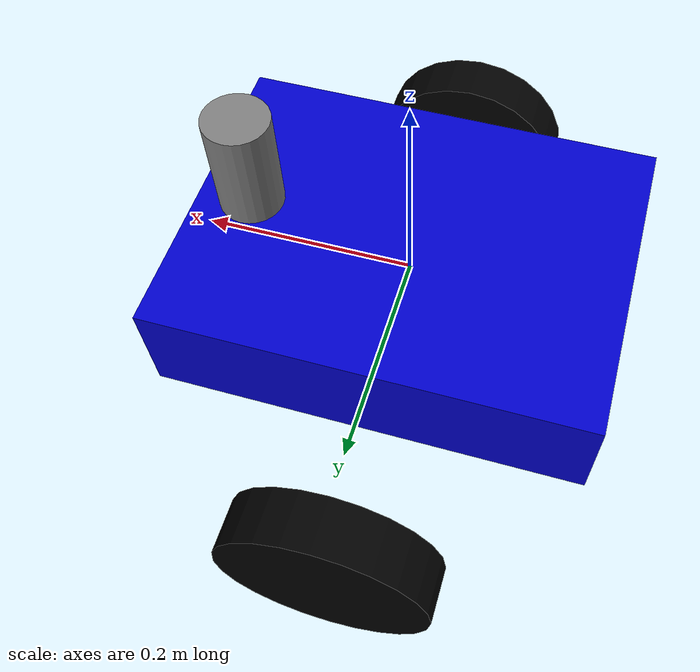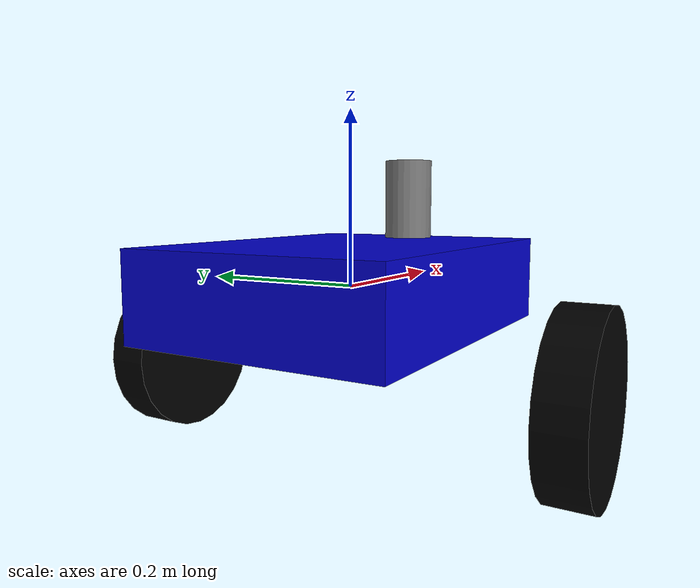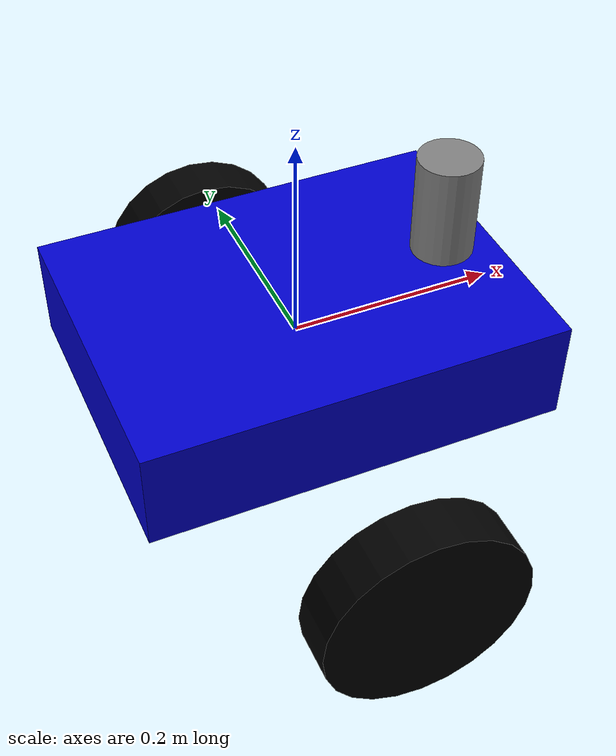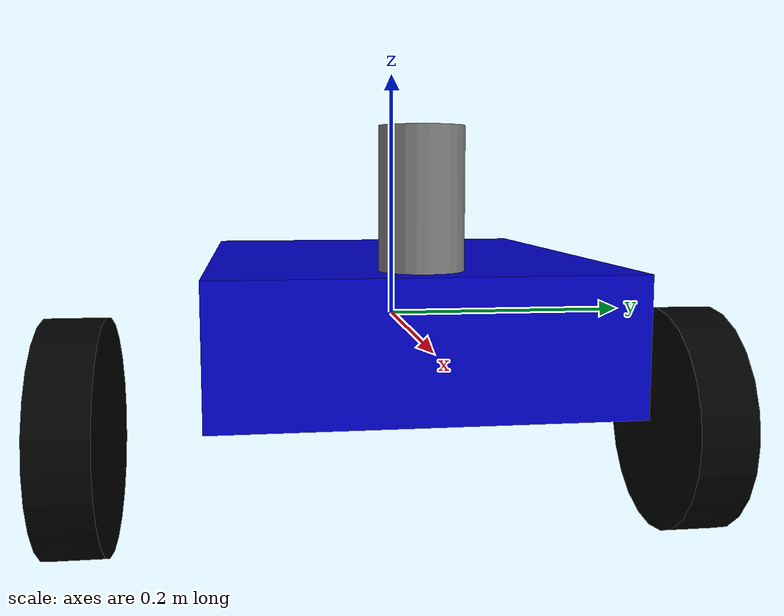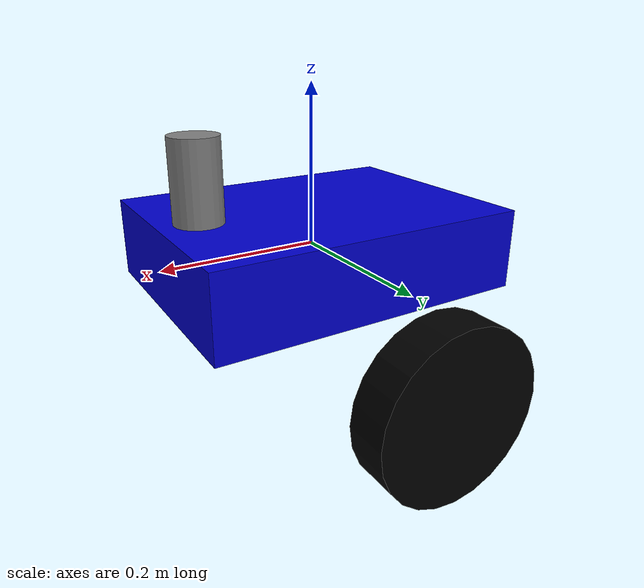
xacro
<?xml version="1.0"?>
<robot name="zlac_robot" xmlns:xacro="http://www.ros.org/wiki/xacro">

  <!-- 定义机器人参数 -->
  <xacro:property name="wheel_radius" value="0.1" />         <!-- 轮子半径 (m) -->
  <xacro:property name="wheel_width" value="0.05" />         <!-- 轮子宽度 (m) -->
  <xacro:property name="wheel_base" value="0.525" />         <!-- 轮距 (m) -->
  <xacro:property name="base_length" value="0.4" />          <!-- 底盘长度 (m) -->
  <xacro:property name="base_width" value="0.3" />           <!-- 底盘宽度 (m) -->
  <xacro:property name="base_height" value="0.1" />          <!-- 底盘高度 (m) -->
  <xacro:property name="base_mass" value="5.0" />            <!-- 底盘质量 (kg) -->
  <xacro:property name="wheel_mass" value="0.5" />           <!-- 轮子质量 (kg) -->

  <!-- 定义材料 -->
  <material name="blue">
    <color rgba="0.0 0.0 0.8 1.0"/>
  </material>

  <material name="black">
    <color rgba="0.0 0.0 0.0 1.0"/>
  </material>

  <material name="gray">
    <color rgba="0.5 0.5 0.5 1.0"/>
  </material>

  <material name="red">
    <color rgba="0.8 0.0 0.0 1.0"/>
  </material>

  <!-- 底盘链接 -->
  <link name="base_link">
    <visual>
      <origin xyz="0 0 0" rpy="0 0 0"/>
      <geometry>
        <box size="${base_length} ${base_width} ${base_height}"/>
      </geometry>
      <material name="blue"/>
    </visual>

    <collision>
      <origin xyz="0 0 0" rpy="0 0 0"/>
      <geometry>
        <box size="${base_length} ${base_width} ${base_height}"/>
      </geometry>
    </collision>

    <inertial>
      <origin xyz="0 0 0" rpy="0 0 0"/>
      <mass value="${base_mass}"/>
      <inertia ixx="${base_mass/12.0 * (base_width*base_width + base_height*base_height)}"
               ixy="0.0"
               ixz="0.0"
               iyy="${base_mass/12.0 * (base_length*base_length + base_height*base_height)}"
               iyz="0.0"
               izz="${base_mass/12.0 * (base_length*base_length + base_width*base_width)}"/>
    </inertial>
  </link>

  <!-- 左轮链接 -->
  <link name="wheel_left">
    <visual>
      <origin xyz="0 0 0" rpy="${pi/2} 0 0"/>
      <geometry>
        <cylinder radius="${wheel_radius}" length="${wheel_width}"/>
      </geometry>
      <material name="black"/>
    </visual>

    <collision>
      <origin xyz="0 0 0" rpy="${pi/2} 0 0"/>
      <geometry>
        <cylinder radius="${wheel_radius}" length="${wheel_width}"/>
      </geometry>
    </collision>

    <inertial>
      <origin xyz="0 0 0" rpy="${pi/2} 0 0"/>
      <mass value="${wheel_mass}"/>
      <inertia ixx="${wheel_mass/12.0 * (3*wheel_radius*wheel_radius + wheel_width*wheel_width)}"
               ixy="0.0"
               ixz="0.0"
               iyy="${wheel_mass/12.0 * (3*wheel_radius*wheel_radius + wheel_width*wheel_width)}"
               iyz="0.0"
               izz="${wheel_mass/2.0 * wheel_radius*wheel_radius}"/>
    </inertial>
  </link>

  <!-- 右轮链接 -->
  <link name="wheel_right">
    <visual>
      <origin xyz="0 0 0" rpy="${pi/2} 0 0"/>
      <geometry>
        <cylinder radius="${wheel_radius}" length="${wheel_width}"/>
      </geometry>
      <material name="black"/>
    </visual>

    <collision>
      <origin xyz="0 0 0" rpy="${pi/2} 0 0"/>
      <geometry>
        <cylinder radius="${wheel_radius}" length="${wheel_width}"/>
      </geometry>
    </collision>

    <inertial>
      <origin xyz="0 0 0" rpy="${pi/2} 0 0"/>
      <mass value="${wheel_mass}"/>
      <inertia ixx="${wheel_mass/12.0 * (3*wheel_radius*wheel_radius + wheel_width*wheel_width)}"
               ixy="0.0"
               ixz="0.0"
               iyy="${wheel_mass/12.0 * (3*wheel_radius*wheel_radius + wheel_width*wheel_width)}"
               iyz="0.0"
               izz="${wheel_mass/2.0 * wheel_radius*wheel_radius}"/>
    </inertial>
  </link>

  <!-- 左轮关节 -->
  <joint name="wheel_joint_left" type="continuous">
    <parent link="base_link"/>
    <child link="wheel_left"/>
    <origin xyz="0 ${wheel_base/2} ${-wheel_radius}" rpy="0 0 0"/>
    <axis xyz="0 1 0"/>
  </joint>

  <!-- 右轮关节 -->
  <joint name="wheel_joint_right" type="continuous">
    <parent link="base_link"/>
    <child link="wheel_right"/>
    <origin xyz="0 ${-wheel_base/2} ${-wheel_radius}" rpy="0 0 0"/>
    <axis xyz="0 1 0"/>
  </joint>

  <!-- 添加激光雷达支架（可选） -->
  <link name="laser_mount">
    <visual>
      <origin xyz="0 0 0.05" rpy="0 0 0"/>
      <geometry>
        <cylinder radius="0.03" length="0.1"/>
      </geometry>
      <material name="gray"/>
    </visual>

    <collision>
      <origin xyz="0 0 0.05" rpy="0 0 0"/>
      <geometry>
        <cylinder radius="0.03" length="0.1"/>
      </geometry>
    </collision>

    <inertial>
      <origin xyz="0 0 0.05" rpy="0 0 0"/>
      <mass value="0.1"/>
      <inertia ixx="0.0001" ixy="0.0" ixz="0.0"
               iyy="0.0001" iyz="0.0" izz="0.0001"/>
    </inertial>
  </link>

  <joint name="laser_mount_joint" type="fixed">
    <parent link="base_link"/>
    <child link="laser_mount"/>
    <origin xyz="0.15 0 0.05" rpy="0 0 0"/>
  </joint>

  <!-- Gazebo 仿真相关设置 -->
  <gazebo reference="base_link">
    <material>Gazebo/Blue</material>
  </gazebo>

  <gazebo reference="wheel_left">
    <material>Gazebo/Black</material>
    <mu1>1.0</mu1>
    <mu2>1.0</mu2>
    <kp>500000.0</kp>
    <kd>10.0</kd>
    <minDepth>0.001</minDepth>
    <maxVel>1.0</maxVel>
    <fdir1>1 0 0</fdir1>
  </gazebo>

  <gazebo reference="wheel_right">
    <material>Gazebo/Black</material>
    <mu1>1.0</mu1>
    <mu2>1.0</mu2>
    <kp>500000.0</kp>
    <kd>10.0</kd>
    <minDepth>0.001</minDepth>
    <maxVel>1.0</maxVel>
    <fdir1>1 0 0</fdir1>
  </gazebo>

  <!-- 为关节发布joint_state -->
  <transmission name="wheel_left_trans">
    <type>transmission_interface/SimpleTransmission</type>
    <joint name="wheel_joint_left">
      <hardwareInterface>hardware_interface/VelocityJointInterface</hardwareInterface>
    </joint>
    <actuator name="wheel_left_motor">
      <hardwareInterface>hardware_interface/VelocityJointInterface</hardwareInterface>
      <mechanicalReduction>1</mechanicalReduction>
    </actuator>
  </transmission>

  <transmission name="wheel_right_trans">
    <type>transmission_interface/SimpleTransmission</type>
    <joint name="wheel_joint_right">
      <hardwareInterface>hardware_interface/VelocityJointInterface</hardwareInterface>
    </joint>
    <actuator name="wheel_right_motor">
      <hardwareInterface>hardware_interface/VelocityJointInterface</hardwareInterface>
      <mechanicalReduction>1</mechanicalReduction>
    </actuator>
  </transmission>

  <!-- Gazebo 控制插件 -->
  <gazebo>
    <plugin name="gazebo_ros_control" filename="libgazebo_ros_control.so">
      <robotNamespace>/</robotNamespace>
      <robotSimType>gazebo_ros_control/DefaultRobotHWSim</robotSimType>
      <legacyModeNS>true</legacyModeNS>
    </plugin>
  </gazebo>

</robot>
